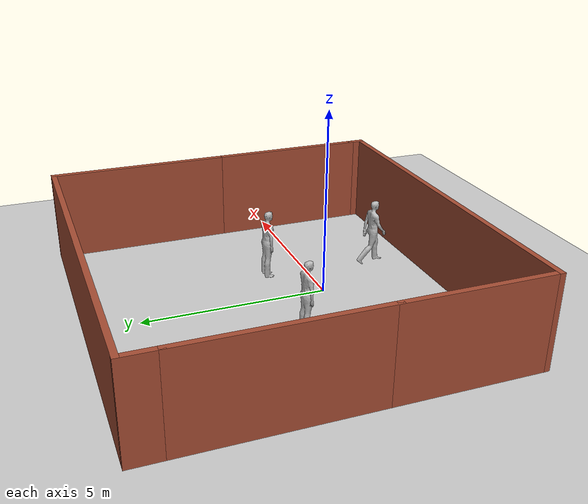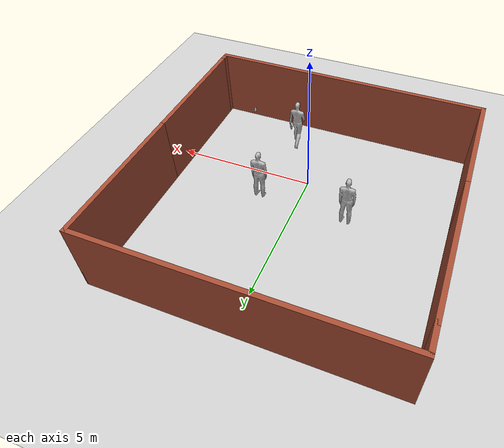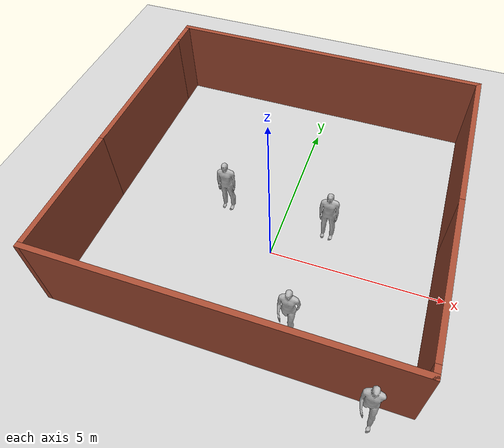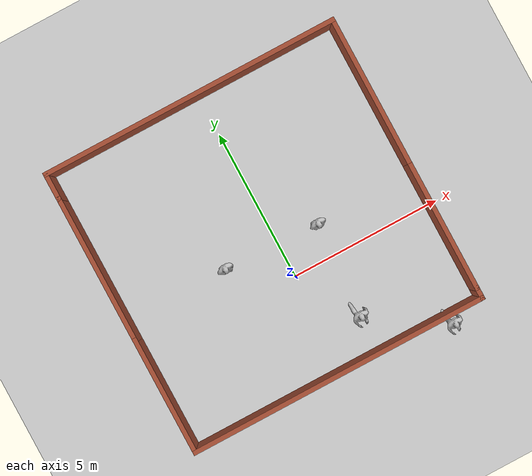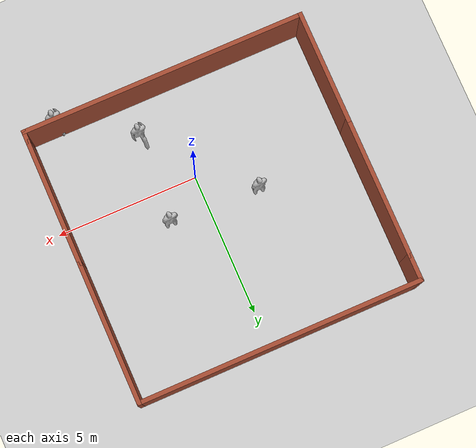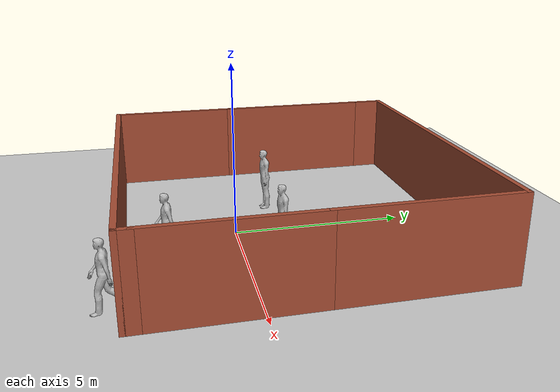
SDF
<sdf version='1.4'>
  <world name='default'>
    <!-- A global light source -->
    <include>
      <uri>model://sun</uri>
    </include>

    <!-- A ground plane -->
    <include>
      <uri>model://ground_plane</uri>
    </include>

    <physics type="ode">
      <real_time_update_rate>1000.0</real_time_update_rate>
      <max_step_size>0.001</max_step_size>
      <real_time_factor>1</real_time_factor>
      <ode>
        <solver>
          <type>quick</type>
          <iters>150</iters>
          <precon_iters>0</precon_iters>
          <sor>1.400000</sor>
          <use_dynamic_moi_rescaling>1</use_dynamic_moi_rescaling>
        </solver>
        <constraints>
          <cfm>0.00001</cfm>
          <erp>0.2</erp>
          <contact_max_correcting_vel>2000.000000</contact_max_correcting_vel>
          <contact_surface_layer>0.01000</contact_surface_layer>
        </constraints>
      </ode>
    </physics>

    <!-- A turtlebot symbol -->
    <include>
      <uri>model://custom_world</uri>
    </include>

    <model name='person_standing'>
      <link name='link'>
        <inertial>
          <pose>0 -0.1 0.95 0 -0 0</pose>
          <mass>80</mass>
          <inertia>
            <ixx>24.88</ixx>
            <ixy>0</ixy>
            <ixz>0</ixz>
            <iyy>25.73</iyy>
            <iyz>0</iyz>
            <izz>2.48</izz>
          </inertia>
        </inertial>
        <collision name='bottom'>
          <pose>0 -0.1 0.01 0 -0 0</pose>
          <geometry>
            <box>
              <size>0.5 0.35 0.02</size>
            </box>
          </geometry>
          <max_contacts>10</max_contacts>
          <surface>
            <contact>
              <ode/>
            </contact>
            <bounce/>
            <friction>
              <torsional>
                <ode/>
              </torsional>
              <ode/>
            </friction>
          </surface>
        </collision>
        <collision name='person'>
          <pose>0 0 0.02 0.04 -0 0</pose>
          <geometry>
            <mesh>
              <uri>model://person_standing/meshes/standing.dae</uri>
            </mesh>
          </geometry>
          <max_contacts>10</max_contacts>
          <surface>
            <contact>
              <ode/>
            </contact>
            <bounce/>
            <friction>
              <torsional>
                <ode/>
              </torsional>
              <ode/>
            </friction>
          </surface>
        </collision>
        <visual name='visual'>
          <pose>0 0 0.02 0.04 -0 0</pose>
          <geometry>
            <mesh>
              <uri>model://person_standing/meshes/standing.dae</uri>
            </mesh>
          </geometry>
        </visual>
        <self_collide>0</self_collide>
        <enable_wind>0</enable_wind>
        <kinematic>0</kinematic>
      </link>
      <pose>1.37308 1.19774 0 0 -0 0</pose>
    </model>
    <model name='person_walking'>
      <link name='link'>
        <inertial>
          <pose>0 0 0.95 0 -0 0</pose>
          <mass>80</mass>
          <inertia>
            <ixx>27.82</ixx>
            <ixy>0</ixy>
            <ixz>0</ixz>
            <iyy>24.88</iyy>
            <iyz>0</iyz>
            <izz>4.57</izz>
          </inertia>
        </inertial>
        <collision name='bottom'>
          <pose>0 0 0.01 0 -0 0</pose>
          <geometry>
            <box>
              <size>0.35 0.75 0.02</size>
            </box>
          </geometry>
          <max_contacts>10</max_contacts>
          <surface>
            <contact>
              <ode/>
            </contact>
            <bounce/>
            <friction>
              <torsional>
                <ode/>
              </torsional>
              <ode/>
            </friction>
          </surface>
        </collision>
        <collision name='person'>
          <pose>0 0 -0.02 0 -0 0</pose>
          <geometry>
            <mesh>
              <uri>model://person_walking/meshes/walking.dae</uri>
            </mesh>
          </geometry>
          <max_contacts>10</max_contacts>
          <surface>
            <contact>
              <ode/>
            </contact>
            <bounce/>
            <friction>
              <torsional>
                <ode/>
              </torsional>
              <ode/>
            </friction>
          </surface>
        </collision>
        <visual name='visual'>
          <pose>0 0 -0.02 0 -0 0</pose>
          <geometry>
            <mesh>
              <uri>model://person_walking/meshes/walking.dae</uri>
            </mesh>
          </geometry>
        </visual>
        <self_collide>0</self_collide>
        <enable_wind>0</enable_wind>
        <kinematic>0</kinematic>
      </link>
      <pose>3.61529 -3.53603 0 0 -0 0</pose>
    </model>
    <model name='person_walking_0'>
      <link name='link'>
        <inertial>
          <pose>0 0 0.95 0 -0 0</pose>
          <mass>80</mass>
          <inertia>
            <ixx>27.82</ixx>
            <ixy>0</ixy>
            <ixz>0</ixz>
            <iyy>24.88</iyy>
            <iyz>0</iyz>
            <izz>4.57</izz>
          </inertia>
        </inertial>
        <collision name='bottom'>
          <pose>0 0 0.01 0 -0 0</pose>
          <geometry>
            <box>
              <size>0.35 0.75 0.02</size>
            </box>
          </geometry>
          <max_contacts>10</max_contacts>
          <surface>
            <contact>
              <ode/>
            </contact>
            <bounce/>
            <friction>
              <torsional>
                <ode/>
              </torsional>
              <ode/>
            </friction>
          </surface>
        </collision>
        <collision name='person'>
          <pose>0 0 -0.02 0 -0 0</pose>
          <geometry>
            <mesh>
              <uri>model://person_walking/meshes/walking.dae</uri>
            </mesh>
          </geometry>
          <max_contacts>10</max_contacts>
          <surface>
            <contact>
              <ode/>
            </contact>
            <bounce/>
            <friction>
              <torsional>
                <ode/>
              </torsional>
              <ode/>
            </friction>
          </surface>
        </collision>
        <visual name='visual'>
          <pose>0 0 -0.02 0 -0 0</pose>
          <geometry>
            <mesh>
              <uri>model://person_walking/meshes/walking.dae</uri>
            </mesh>
          </geometry>
        </visual>
        <self_collide>0</self_collide>
        <enable_wind>0</enable_wind>
        <kinematic>0</kinematic>
      </link>
      <pose>1.18589 -1.97638 0 0 -0 0</pose>
    </model>
    <model name='person_standing_0'>
      <link name='link'>
        <inertial>
          <pose>0 -0.1 0.95 0 -0 0</pose>
          <mass>80</mass>
          <inertia>
            <ixx>24.88</ixx>
            <ixy>0</ixy>
            <ixz>0</ixz>
            <iyy>25.73</iyy>
            <iyz>0</iyz>
            <izz>2.48</izz>
          </inertia>
        </inertial>
        <collision name='bottom'>
          <pose>0 -0.1 0.01 0 -0 0</pose>
          <geometry>
            <box>
              <size>0.5 0.35 0.02</size>
            </box>
          </geometry>
          <max_contacts>10</max_contacts>
          <surface>
            <contact>
              <ode/>
            </contact>
            <bounce/>
            <friction>
              <torsional>
                <ode/>
              </torsional>
              <ode/>
            </friction>
          </surface>
        </collision>
        <collision name='person'>
          <pose>0 0 0.02 0.04 -0 0</pose>
          <geometry>
            <mesh>
              <uri>model://person_standing/meshes/standing.dae</uri>
            </mesh>
          </geometry>
          <max_contacts>10</max_contacts>
          <surface>
            <contact>
              <ode/>
            </contact>
            <bounce/>
            <friction>
              <torsional>
                <ode/>
              </torsional>
              <ode/>
            </friction>
          </surface>
        </collision>
        <visual name='visual'>
          <pose>0 0 0.02 0.04 -0 0</pose>
          <geometry>
            <mesh>
              <uri>model://person_standing/meshes/standing.dae</uri>
            </mesh>
          </geometry>
        </visual>
        <self_collide>0</self_collide>
        <enable_wind>0</enable_wind>
        <kinematic>0</kinematic>
      </link>
      <pose>-1.79259 1.32106 0 0 -0 0</pose>
    </model>

    <scene>
      <ambient>0.4 0.4 0.4 1</ambient>
      <background>0.7 0.7 0.7 1</background>
      <shadows>true</shadows>
    </scene>

    <gui fullscreen='0'>
      <camera name='user_camera'>
        <pose>0.0 0.0 17.0 0 1.5708 0</pose>
        <view_controller>orbit</view_controller>
      </camera>
    </gui>
  </world>
</sdf>

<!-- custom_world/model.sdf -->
<sdf version='1.7'>
  <model name='custom_world'>
    <pose>-0.275 1.565 0 0 -0 0</pose>
    <link name='Wall_31'>
      <collision name='Wall_31_Collision'>
        <geometry>
          <box>
            <size>10 0.15 2.5</size>
          </box>
        </geometry>
        <pose>0 0 1.25 0 -0 0</pose>
      </collision>
      <visual name='Wall_31_Visual'>
        <pose>0 0 1.25 0 -0 0</pose>
        <geometry>
          <box>
            <size>10 0.15 2.5</size>
          </box>
        </geometry>
        <material>
          <script>
            <uri>file://media/materials/scripts/gazebo.material</uri>
            <name>Gazebo/Bricks</name>
          </script>
          <ambient>1 1 1 1</ambient>
        </material>
        <meta>
          <layer>0</layer>
        </meta>
      </visual>
      <pose>-0 4.775 0 0 -0 0</pose>
    </link>
    <link name='Wall_34'>
      <collision name='Wall_34_Collision'>
        <geometry>
          <box>
            <size>5 0.15 2.5</size>
          </box>
        </geometry>
        <pose>0 0 1.25 0 -0 0</pose>
      </collision>
      <visual name='Wall_34_Visual'>
        <pose>0 0 1.25 0 -0 0</pose>
        <geometry>
          <box>
            <size>5 0.15 2.5</size>
          </box>
        </geometry>
        <material>
          <script>
            <uri>file://media/materials/scripts/gazebo.material</uri>
            <name>Gazebo/Bricks</name>
          </script>
          <ambient>1 1 1 1</ambient>
        </material>
        <meta>
          <layer>0</layer>
        </meta>
      </visual>
      <pose>4.925 2.35 0 0 -0 -1.5708</pose>
    </link>
    <link name='Wall_36'>
      <collision name='Wall_36_Collision'>
        <geometry>
          <box>
            <size>4.5 0.15 2.5</size>
          </box>
        </geometry>
        <pose>0 0 1.25 0 -0 0</pose>
      </collision>
      <visual name='Wall_36_Visual'>
        <pose>0 0 1.25 0 -0 0</pose>
        <geometry>
          <box>
            <size>4.5 0.15 2.5</size>
          </box>
        </geometry>
        <material>
          <script>
            <uri>file://media/materials/scripts/gazebo.material</uri>
            <name>Gazebo/Bricks</name>
          </script>
          <ambient>1 1 1 1</ambient>
        </material>
        <meta>
          <layer>0</layer>
        </meta>
      </visual>
      <pose>4.925 -2.25 0 0 -0 -1.5708</pose>
    </link>
    <link name='Wall_38'>
      <collision name='Wall_38_Collision'>
        <geometry>
          <box>
            <size>0.5 0.15 2.5</size>
          </box>
        </geometry>
        <pose>0 0 1.25 0 -0 0</pose>
      </collision>
      <visual name='Wall_38_Visual'>
        <pose>0 0 1.25 0 -0 0</pose>
        <geometry>
          <box>
            <size>0.5 0.15 2.5</size>
          </box>
        </geometry>
        <material>
          <script>
            <uri>file://media/materials/scripts/gazebo.material</uri>
            <name>Gazebo/Bricks</name>
          </script>
          <ambient>1 1 1 1</ambient>
        </material>
        <meta>
          <layer>0</layer>
        </meta>
      </visual>
      <pose>4.925 -4.6 0 0 -0 -1.5708</pose>
    </link>
    <link name='Wall_39'>
      <collision name='Wall_39_Collision'>
        <geometry>
          <box>
            <size>10 0.15 2.5</size>
          </box>
        </geometry>
        <pose>0 0 1.25 0 -0 0</pose>
      </collision>
      <visual name='Wall_39_Visual'>
        <pose>0 0 1.25 0 -0 0</pose>
        <geometry>
          <box>
            <size>10 0.15 2.5</size>
          </box>
        </geometry>
        <material>
          <script>
            <uri>file://media/materials/scripts/gazebo.material</uri>
            <name>Gazebo/Bricks</name>
          </script>
          <ambient>1 1 1 1</ambient>
        </material>
        <meta>
          <layer>0</layer>
        </meta>
      </visual>
      <pose>-0 -4.775 0 0 -0 3.14159</pose>
    </link>
    <link name='Wall_42'>
      <collision name='Wall_42_Collision'>
        <geometry>
          <box>
            <size>4 0.15 2.5</size>
          </box>
        </geometry>
        <pose>0 0 1.25 0 -0 0</pose>
      </collision>
      <visual name='Wall_42_Visual'>
        <pose>0 0 1.25 0 -0 0</pose>
        <geometry>
          <box>
            <size>4 0.15 2.5</size>
          </box>
        </geometry>
        <material>
          <script>
            <uri>file://media/materials/scripts/gazebo.material</uri>
            <name>Gazebo/Bricks</name>
          </script>
          <ambient>1 1 1 1</ambient>
        </material>
        <meta>
          <layer>0</layer>
        </meta>
      </visual>
      <pose>-4.925 -2.85 0 0 -0 1.5708</pose>
    </link>
    <link name='Wall_44'>
      <collision name='Wall_44_Collision'>
        <geometry>
          <box>
            <size>5 0.15 2.5</size>
          </box>
        </geometry>
        <pose>0 0 1.25 0 -0 0</pose>
      </collision>
      <visual name='Wall_44_Visual'>
        <pose>0 0 1.25 0 -0 0</pose>
        <geometry>
          <box>
            <size>5 0.15 2.5</size>
          </box>
        </geometry>
        <material>
          <script>
            <uri>file://media/materials/scripts/gazebo.material</uri>
            <name>Gazebo/Bricks</name>
          </script>
          <ambient>1 1 1 1</ambient>
        </material>
        <meta>
          <layer>0</layer>
        </meta>
      </visual>
      <pose>-4.925 1.5 0 0 -0 1.5708</pose>
    </link>
    <link name='Wall_46'>
      <collision name='Wall_46_Collision'>
        <geometry>
          <box>
            <size>1 0.15 2.5</size>
          </box>
        </geometry>
        <pose>0 0 1.25 0 -0 0</pose>
      </collision>
      <visual name='Wall_46_Visual'>
        <pose>0 0 1.25 0 -0 0</pose>
        <geometry>
          <box>
            <size>1 0.15 2.5</size>
          </box>
        </geometry>
        <material>
          <script>
            <uri>file://media/materials/scripts/gazebo.material</uri>
            <name>Gazebo/Bricks</name>
          </script>
          <ambient>1 1 1 1</ambient>
        </material>
        <meta>
          <layer>0</layer>
        </meta>
      </visual>
      <pose>-4.925 4.35 0 0 -0 1.5708</pose>
    </link>
    <static>1</static>
  </model>
</sdf>
